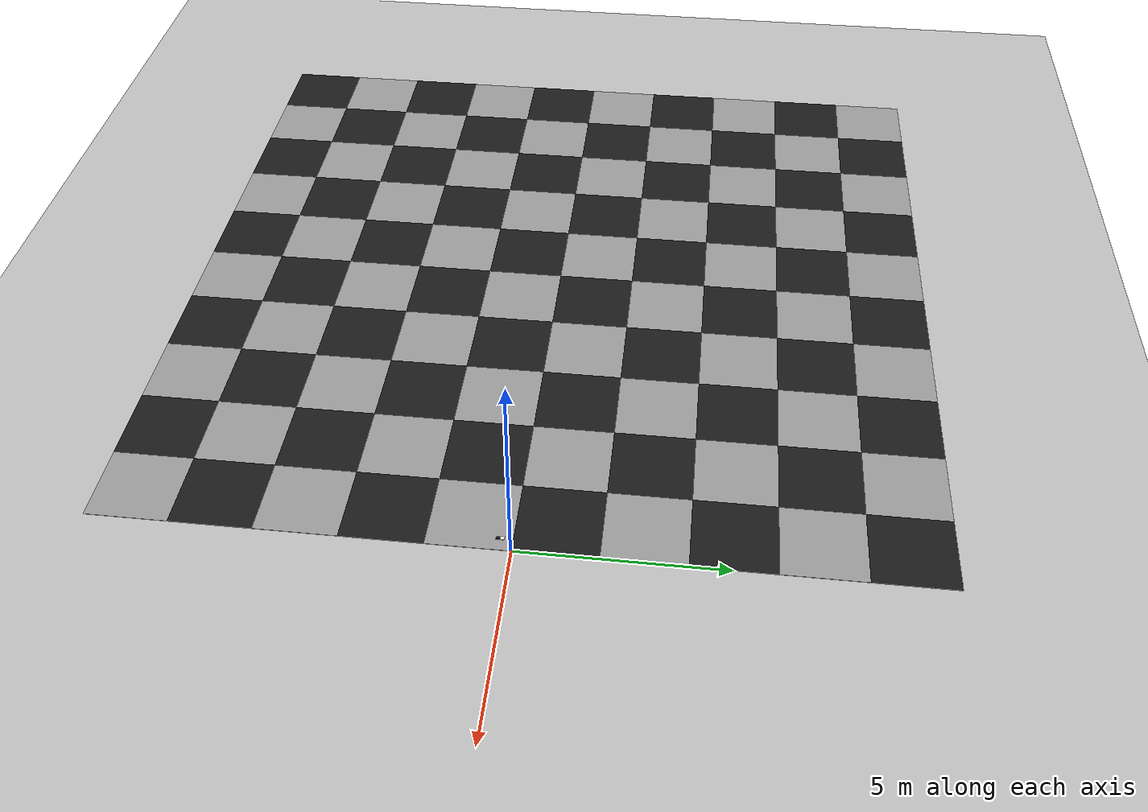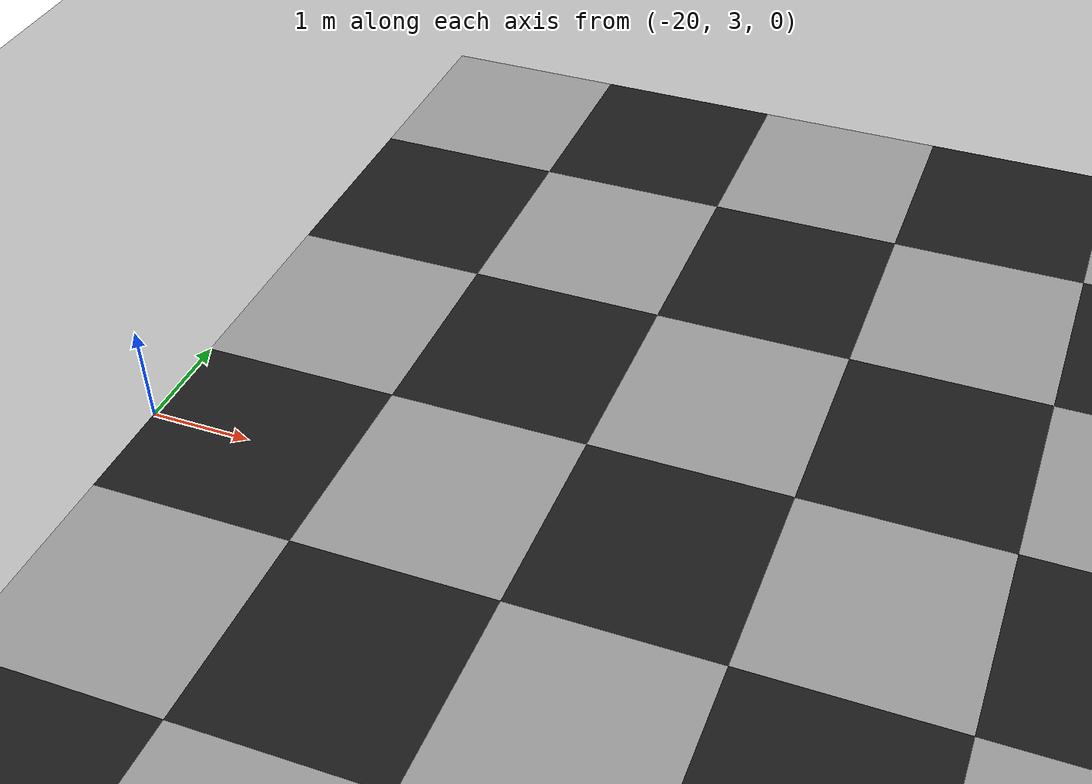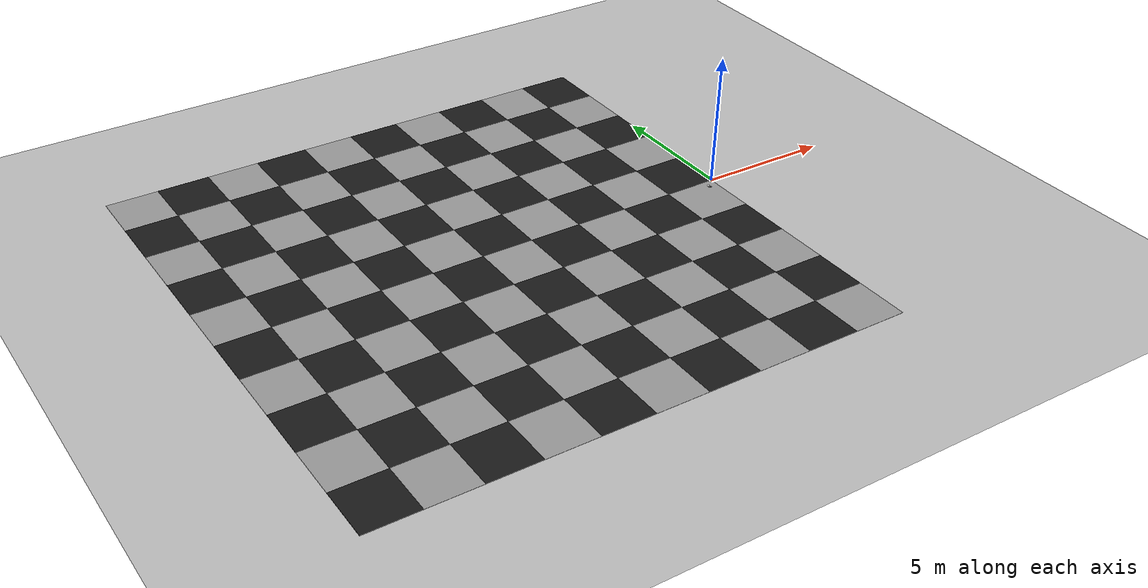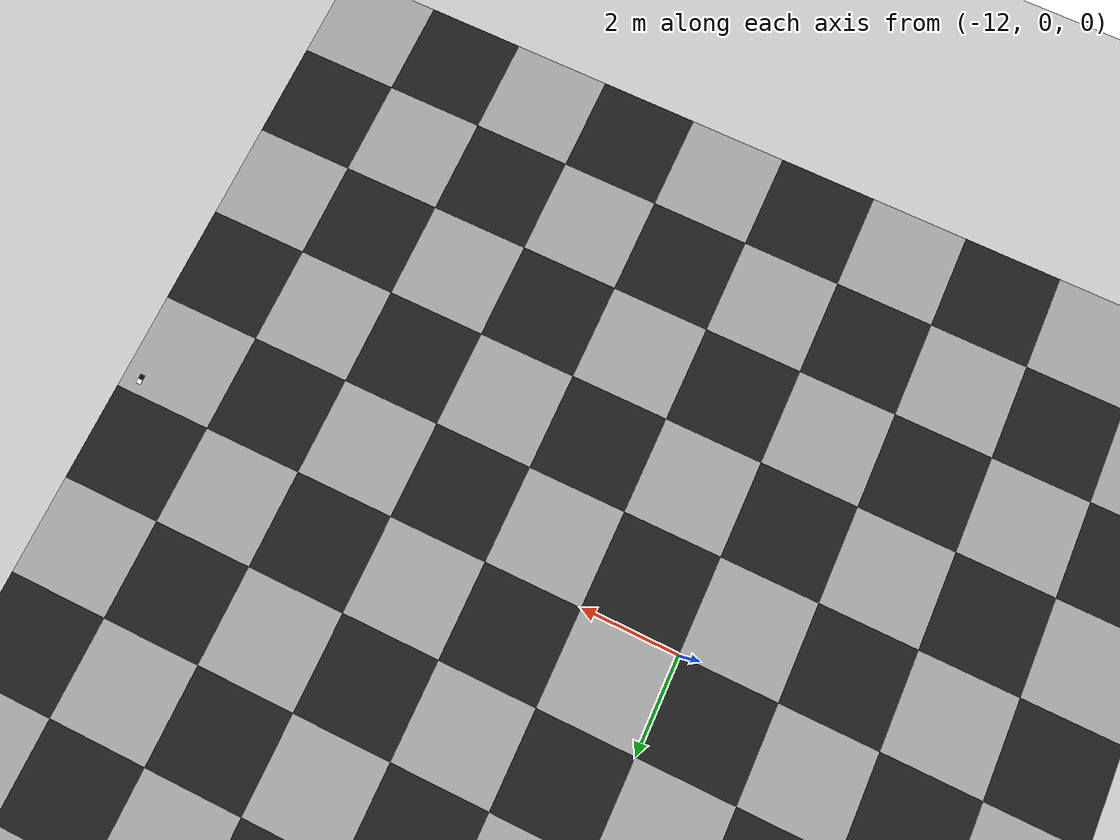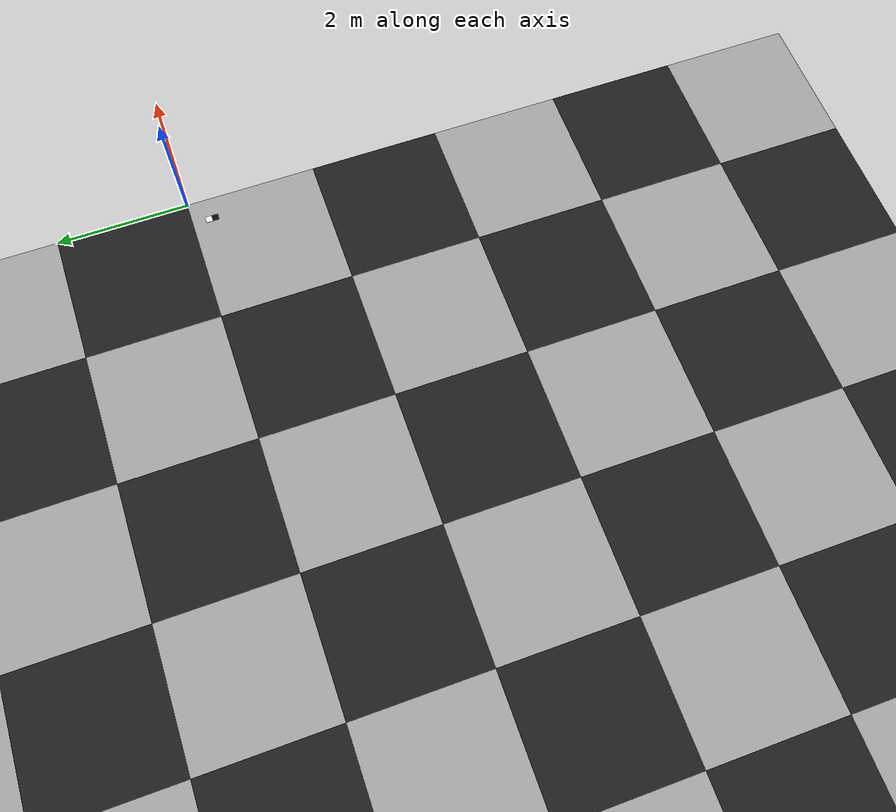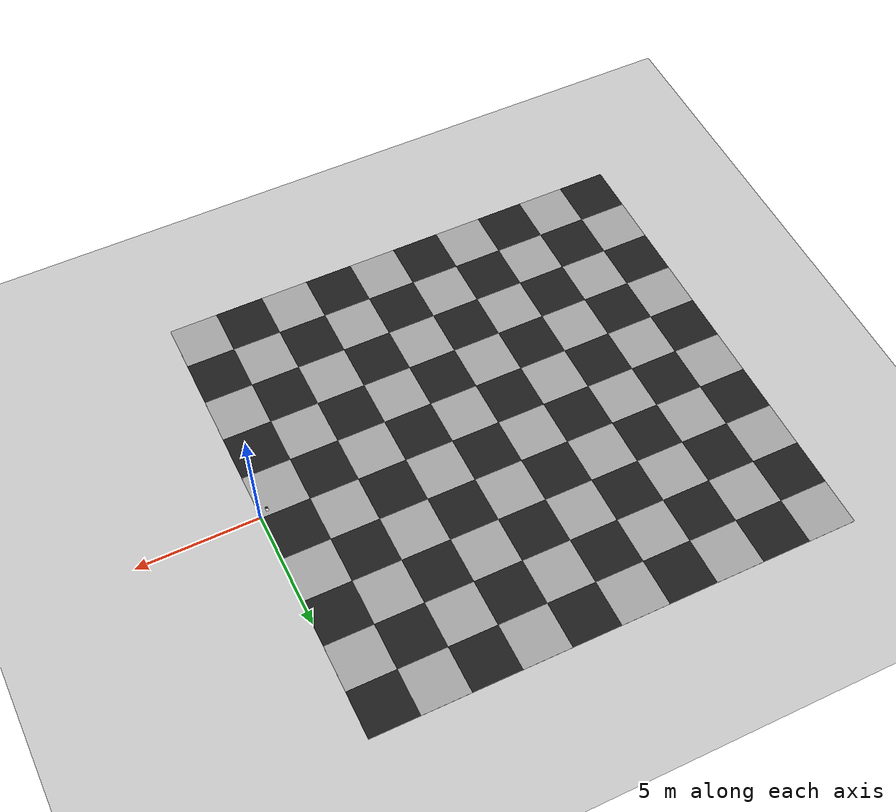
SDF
<sdf version="1.9">
 <world name="v7_railway_tunnel">
  <model name="ground_plane">
   <static>true</static>
   <link name="link">
    <collision name="collision">
     <geometry><plane><normal>0 0 1</normal><size>1 1</size></plane></geometry>
    </collision>
    <visual name="visual">
     <geometry><plane><normal>0 0 1</normal><size>500 500</size></plane></geometry>
     <material>
      <ambient>0.8 0.8 0.8 1</ambient>
      <diffuse>0.8 0.8 0.8 1</diffuse>
      <specular>0.1 0.1 0.1 1</specular>
     </material>
    </visual>
   </link>
  </model>
  <model name="optical_flow_floor">
   <static>true</static>
   <link name="tile_0_0">
    <pose>-19 -9 0.006 0 0 0</pose>
    <visual name="visual">
     <geometry><box><size>2 2 0.01</size></box></geometry>
     <material>
      <ambient>0.12 0.12 0.12 1</ambient>
      <diffuse>0.12 0.12 0.12 1</diffuse>
      <specular>0.1 0.1 0.1 1</specular>
     </material>
    </visual>
   </link>
   <link name="tile_0_1">
    <pose>-19 -7 0.006 0 0 0</pose>
    <visual name="visual">
     <geometry><box><size>2 2 0.01</size></box></geometry>
     <material>
      <ambient>0.65 0.65 0.65 1</ambient>
      <diffuse>0.65 0.65 0.65 1</diffuse>
      <specular>0.1 0.1 0.1 1</specular>
     </material>
    </visual>
   </link>
   <link name="tile_0_2">
    <pose>-19 -5 0.006 0 0 0</pose>
    <visual name="visual">
     <geometry><box><size>2 2 0.01</size></box></geometry>
     <material>
      <ambient>0.12 0.12 0.12 1</ambient>
      <diffuse>0.12 0.12 0.12 1</diffuse>
      <specular>0.1 0.1 0.1 1</specular>
     </material>
    </visual>
   </link>
   <link name="tile_0_3">
    <pose>-19 -3 0.006 0 0 0</pose>
    <visual name="visual">
     <geometry><box><size>2 2 0.01</size></box></geometry>
     <material>
      <ambient>0.65 0.65 0.65 1</ambient>
      <diffuse>0.65 0.65 0.65 1</diffuse>
      <specular>0.1 0.1 0.1 1</specular>
     </material>
    </visual>
   </link>
   <link name="tile_0_4">
    <pose>-19 -1 0.006 0 0 0</pose>
    <visual name="visual">
     <geometry><box><size>2 2 0.01</size></box></geometry>
     <material>
      <ambient>0.12 0.12 0.12 1</ambient>
      <diffuse>0.12 0.12 0.12 1</diffuse>
      <specular>0.1 0.1 0.1 1</specular>
     </material>
    </visual>
   </link>
   <link name="tile_0_5">
    <pose>-19 1 0.006 0 0 0</pose>
    <visual name="visual">
     <geometry><box><size>2 2 0.01</size></box></geometry>
     <material>
      <ambient>0.65 0.65 0.65 1</ambient>
      <diffuse>0.65 0.65 0.65 1</diffuse>
      <specular>0.1 0.1 0.1 1</specular>
     </material>
    </visual>
   </link>
   <link name="tile_0_6">
    <pose>-19 3 0.006 0 0 0</pose>
    <visual name="visual">
     <geometry><box><size>2 2 0.01</size></box></geometry>
     <material>
      <ambient>0.12 0.12 0.12 1</ambient>
      <diffuse>0.12 0.12 0.12 1</diffuse>
      <specular>0.1 0.1 0.1 1</specular>
     </material>
    </visual>
   </link>
   <link name="tile_0_7">
    <pose>-19 5 0.006 0 0 0</pose>
    <visual name="visual">
     <geometry><box><size>2 2 0.01</size></box></geometry>
     <material>
      <ambient>0.65 0.65 0.65 1</ambient>
      <diffuse>0.65 0.65 0.65 1</diffuse>
      <specular>0.1 0.1 0.1 1</specular>
     </material>
    </visual>
   </link>
   <link name="tile_0_8">
    <pose>-19 7 0.006 0 0 0</pose>
    <visual name="visual">
     <geometry><box><size>2 2 0.01</size></box></geometry>
     <material>
      <ambient>0.12 0.12 0.12 1</ambient>
      <diffuse>0.12 0.12 0.12 1</diffuse>
      <specular>0.1 0.1 0.1 1</specular>
     </material>
    </visual>
   </link>
   <link name="tile_0_9">
    <pose>-19 9 0.006 0 0 0</pose>
    <visual name="visual">
     <geometry><box><size>2 2 0.01</size></box></geometry>
     <material>
      <ambient>0.65 0.65 0.65 1</ambient>
      <diffuse>0.65 0.65 0.65 1</diffuse>
      <specular>0.1 0.1 0.1 1</specular>
     </material>
    </visual>
   </link>
   <link name="tile_1_0">
    <pose>-17 -9 0.006 0 0 0</pose>
    <visual name="visual">
     <geometry><box><size>2 2 0.01</size></box></geometry>
     <material>
      <ambient>0.65 0.65 0.65 1</ambient>
      <diffuse>0.65 0.65 0.65 1</diffuse>
      <specular>0.1 0.1 0.1 1</specular>
     </material>
    </visual>
   </link>
   <link name="tile_1_1">
    <pose>-17 -7 0.006 0 0 0</pose>
    <visual name="visual">
     <geometry><box><size>2 2 0.01</size></box></geometry>
     <material>
      <ambient>0.12 0.12 0.12 1</ambient>
      <diffuse>0.12 0.12 0.12 1</diffuse>
      <specular>0.1 0.1 0.1 1</specular>
     </material>
    </visual>
   </link>
   <link name="tile_1_2">
    <pose>-17 -5 0.006 0 0 0</pose>
    <visual name="visual">
     <geometry><box><size>2 2 0.01</size></box></geometry>
     <material>
      <ambient>0.65 0.65 0.65 1</ambient>
      <diffuse>0.65 0.65 0.65 1</diffuse>
      <specular>0.1 0.1 0.1 1</specular>
     </material>
    </visual>
   </link>
   <link name="tile_1_3">
    <pose>-17 -3 0.006 0 0 0</pose>
    <visual name="visual">
     <geometry><box><size>2 2 0.01</size></box></geometry>
     <material>
      <ambient>0.12 0.12 0.12 1</ambient>
      <diffuse>0.12 0.12 0.12 1</diffuse>
      <specular>0.1 0.1 0.1 1</specular>
     </material>
    </visual>
   </link>
   <link name="tile_1_4">
    <pose>-17 -1 0.006 0 0 0</pose>
    <visual name="visual">
     <geometry><box><size>2 2 0.01</size></box></geometry>
     <material>
      <ambient>0.65 0.65 0.65 1</ambient>
      <diffuse>0.65 0.65 0.65 1</diffuse>
      <specular>0.1 0.1 0.1 1</specular>
     </material>
    </visual>
   </link>
   <link name="tile_1_5">
    <pose>-17 1 0.006 0 0 0</pose>
    <visual name="visual">
     <geometry><box><size>2 2 0.01</size></box></geometry>
     <material>
      <ambient>0.12 0.12 0.12 1</ambient>
      <diffuse>0.12 0.12 0.12 1</diffuse>
      <specular>0.1 0.1 0.1 1</specular>
     </material>
    </visual>
   </link>
   <link name="tile_1_6">
    <pose>-17 3 0.006 0 0 0</pose>
    <visual name="visual">
     <geometry><box><size>2 2 0.01</size></box></geometry>
     <material>
      <ambient>0.65 0.65 0.65 1</ambient>
      <diffuse>0.65 0.65 0.65 1</diffuse>
      <specular>0.1 0.1 0.1 1</specular>
     </material>
    </visual>
   </link>
   <link name="tile_1_7">
    <pose>-17 5 0.006 0 0 0</pose>
    <visual name="visual">
     <geometry><box><size>2 2 0.01</size></box></geometry>
     <material>
      <ambient>0.12 0.12 0.12 1</ambient>
      <diffuse>0.12 0.12 0.12 1</diffuse>
      <specular>0.1 0.1 0.1 1</specular>
     </material>
    </visual>
   </link>
   <link name="tile_1_8">
    <pose>-17 7 0.006 0 0 0</pose>
    <visual name="visual">
     <geometry><box><size>2 2 0.01</size></box></geometry>
     <material>
      <ambient>0.65 0.65 0.65 1</ambient>
      <diffuse>0.65 0.65 0.65 1</diffuse>
      <specular>0.1 0.1 0.1 1</specular>
     </material>
    </visual>
   </link>
   <link name="tile_1_9">
    <pose>-17 9 0.006 0 0 0</pose>
    <visual name="visual">
     <geometry><box><size>2 2 0.01</size></box></geometry>
     <material>
      <ambient>0.12 0.12 0.12 1</ambient>
      <diffuse>0.12 0.12 0.12 1</diffuse>
      <specular>0.1 0.1 0.1 1</specular>
     </material>
    </visual>
   </link>
   <link name="tile_2_0">
    <pose>-15 -9 0.006 0 0 0</pose>
    <visual name="visual">
     <geometry><box><size>2 2 0.01</size></box></geometry>
     <material>
      <ambient>0.12 0.12 0.12 1</ambient>
      <diffuse>0.12 0.12 0.12 1</diffuse>
      <specular>0.1 0.1 0.1 1</specular>
     </material>
    </visual>
   </link>
   <link name="tile_2_1">
    <pose>-15 -7 0.006 0 0 0</pose>
    <visual name="visual">
     <geometry><box><size>2 2 0.01</size></box></geometry>
     <material>
      <ambient>0.65 0.65 0.65 1</ambient>
      <diffuse>0.65 0.65 0.65 1</diffuse>
      <specular>0.1 0.1 0.1 1</specular>
     </material>
    </visual>
   </link>
   <link name="tile_2_2">
    <pose>-15 -5 0.006 0 0 0</pose>
    <visual name="visual">
     <geometry><box><size>2 2 0.01</size></box></geometry>
     <material>
      <ambient>0.12 0.12 0.12 1</ambient>
      <diffuse>0.12 0.12 0.12 1</diffuse>
      <specular>0.1 0.1 0.1 1</specular>
     </material>
    </visual>
   </link>
   <link name="tile_2_3">
    <pose>-15 -3 0.006 0 0 0</pose>
    <visual name="visual">
     <geometry><box><size>2 2 0.01</size></box></geometry>
     <material>
      <ambient>0.65 0.65 0.65 1</ambient>
      <diffuse>0.65 0.65 0.65 1</diffuse>
      <specular>0.1 0.1 0.1 1</specular>
     </material>
    </visual>
   </link>
   <link name="tile_2_4">
    <pose>-15 -1 0.006 0 0 0</pose>
    <visual name="visual">
     <geometry><box><size>2 2 0.01</size></box></geometry>
     <material>
      <ambient>0.12 0.12 0.12 1</ambient>
      <diffuse>0.12 0.12 0.12 1</diffuse>
      <specular>0.1 0.1 0.1 1</specular>
     </material>
    </visual>
   </link>
   <link name="tile_2_5">
    <pose>-15 1 0.006 0 0 0</pose>
    <visual name="visual">
     <geometry><box><size>2 2 0.01</size></box></geometry>
     <material>
      <ambient>0.65 0.65 0.65 1</ambient>
      <diffuse>0.65 0.65 0.65 1</diffuse>
      <specular>0.1 0.1 0.1 1</specular>
     </material>
    </visual>
   </link>
   <link name="tile_2_6">
    <pose>-15 3 0.006 0 0 0</pose>
    <visual name="visual">
     <geometry><box><size>2 2 0.01</size></box></geometry>
     <material>
      <ambient>0.12 0.12 0.12 1</ambient>
      <diffuse>0.12 0.12 0.12 1</diffuse>
      <specular>0.1 0.1 0.1 1</specular>
     </material>
    </visual>
   </link>
   <link name="tile_2_7">
    <pose>-15 5 0.006 0 0 0</pose>
    <visual name="visual">
     <geometry><box><size>2 2 0.01</size></box></geometry>
     <material>
      <ambient>0.65 0.65 0.65 1</ambient>
      <diffuse>0.65 0.65 0.65 1</diffuse>
      <specular>0.1 0.1 0.1 1</specular>
     </material>
    </visual>
   </link>
   <link name="tile_2_8">
    <pose>-15 7 0.006 0 0 0</pose>
    <visual name="visual">
     <geometry><box><size>2 2 0.01</size></box></geometry>
     <material>
      <ambient>0.12 0.12 0.12 1</ambient>
      <diffuse>0.12 0.12 0.12 1</diffuse>
      <specular>0.1 0.1 0.1 1</specular>
     </material>
    </visual>
   </link>
   <link name="tile_2_9">
    <pose>-15 9 0.006 0 0 0</pose>
    <visual name="visual">
     <geometry><box><size>2 2 0.01</size></box></geometry>
     <material>
      <ambient>0.65 0.65 0.65 1</ambient>
      <diffuse>0.65 0.65 0.65 1</diffuse>
      <specular>0.1 0.1 0.1 1</specular>
     </material>
    </visual>
   </link>
   <link name="tile_3_0">
    <pose>-13 -9 0.006 0 0 0</pose>
    <visual name="visual">
     <geometry><box><size>2 2 0.01</size></box></geometry>
     <material>
      <ambient>0.65 0.65 0.65 1</ambient>
      <diffuse>0.65 0.65 0.65 1</diffuse>
      <specular>0.1 0.1 0.1 1</specular>
     </material>
    </visual>
   </link>
   <link name="tile_3_1">
    <pose>-13 -7 0.006 0 0 0</pose>
    <visual name="visual">
     <geometry><box><size>2 2 0.01</size></box></geometry>
     <material>
      <ambient>0.12 0.12 0.12 1</ambient>
      <diffuse>0.12 0.12 0.12 1</diffuse>
      <specular>0.1 0.1 0.1 1</specular>
     </material>
    </visual>
   </link>
   <link name="tile_3_2">
    <pose>-13 -5 0.006 0 0 0</pose>
    <visual name="visual">
     <geometry><box><size>2 2 0.01</size></box></geometry>
     <material>
      <ambient>0.65 0.65 0.65 1</ambient>
      <diffuse>0.65 0.65 0.65 1</diffuse>
      <specular>0.1 0.1 0.1 1</specular>
     </material>
    </visual>
   </link>
   <link name="tile_3_3">
    <pose>-13 -3 0.006 0 0 0</pose>
    <visual name="visual">
     <geometry><box><size>2 2 0.01</size></box></geometry>
     <material>
      <ambient>0.12 0.12 0.12 1</ambient>
      <diffuse>0.12 0.12 0.12 1</diffuse>
      <specular>0.1 0.1 0.1 1</specular>
     </material>
    </visual>
   </link>
   <link name="tile_3_4">
    <pose>-13 -1 0.006 0 0 0</pose>
    <visual name="visual">
     <geometry><box><size>2 2 0.01</size></box></geometry>
     <material>
      <ambient>0.65 0.65 0.65 1</ambient>
      <diffuse>0.65 0.65 0.65 1</diffuse>
      <specular>0.1 0.1 0.1 1</specular>
     </material>
    </visual>
   </link>
   <link name="tile_3_5">
    <pose>-13 1 0.006 0 0 0</pose>
    <visual name="visual">
     <geometry><box><size>2 2 0.01</size></box></geometry>
     <material>
      <ambient>0.12 0.12 0.12 1</ambient>
      <diffuse>0.12 0.12 0.12 1</diffuse>
      <specular>0.1 0.1 0.1 1</specular>
     </material>
    </visual>
   </link>
   <link name="tile_3_6">
    <pose>-13 3 0.006 0 0 0</pose>
    <visual name="visual">
     <geometry><box><size>2 2 0.01</size></box></geometry>
     <material>
      <ambient>0.65 0.65 0.65 1</ambient>
      <diffuse>0.65 0.65 0.65 1</diffuse>
      <specular>0.1 0.1 0.1 1</specular>
     </material>
    </visual>
   </link>
   <link name="tile_3_7">
    <pose>-13 5 0.006 0 0 0</pose>
    <visual name="visual">
     <geometry><box><size>2 2 0.01</size></box></geometry>
     <material>
      <ambient>0.12 0.12 0.12 1</ambient>
      <diffuse>0.12 0.12 0.12 1</diffuse>
      <specular>0.1 0.1 0.1 1</specular>
     </material>
    </visual>
   </link>
   <link name="tile_3_8">
    <pose>-13 7 0.006 0 0 0</pose>
    <visual name="visual">
     <geometry><box><size>2 2 0.01</size></box></geometry>
     <material>
      <ambient>0.65 0.65 0.65 1</ambient>
      <diffuse>0.65 0.65 0.65 1</diffuse>
      <specular>0.1 0.1 0.1 1</specular>
     </material>
    </visual>
   </link>
   <link name="tile_3_9">
    <pose>-13 9 0.006 0 0 0</pose>
    <visual name="visual">
     <geometry><box><size>2 2 0.01</size></box></geometry>
     <material>
      <ambient>0.12 0.12 0.12 1</ambient>
      <diffuse>0.12 0.12 0.12 1</diffuse>
      <specular>0.1 0.1 0.1 1</specular>
     </material>
    </visual>
   </link>
   <link name="tile_4_0">
    <pose>-11 -9 0.006 0 0 0</pose>
    <visual name="visual">
     <geometry><box><size>2 2 0.01</size></box></geometry>
     <material>
      <ambient>0.12 0.12 0.12 1</ambient>
      <diffuse>0.12 0.12 0.12 1</diffuse>
      <specular>0.1 0.1 0.1 1</specular>
     </material>
    </visual>
   </link>
   <link name="tile_4_1">
    <pose>-11 -7 0.006 0 0 0</pose>
    <visual name="visual">
     <geometry><box><size>2 2 0.01</size></box></geometry>
     <material>
      <ambient>0.65 0.65 0.65 1</ambient>
      <diffuse>0.65 0.65 0.65 1</diffuse>
      <specular>0.1 0.1 0.1 1</specular>
     </material>
    </visual>
   </link>
   <link name="tile_4_2">
    <pose>-11 -5 0.006 0 0 0</pose>
    <visual name="visual">
     <geometry><box><size>2 2 0.01</size></box></geometry>
     <material>
      <ambient>0.12 0.12 0.12 1</ambient>
      <diffuse>0.12 0.12 0.12 1</diffuse>
      <specular>0.1 0.1 0.1 1</specular>
     </material>
    </visual>
   </link>
   <link name="tile_4_3">
    <pose>-11 -3 0.006 0 0 0</pose>
    <visual name="visual">
     <geometry><box><size>2 2 0.01</size></box></geometry>
     <material>
      <ambient>0.65 0.65 0.65 1</ambient>
      <diffuse>0.65 0.65 0.65 1</diffuse>
      <specular>0.1 0.1 0.1 1</specular>
     </material>
    </visual>
   </link>
   <link name="tile_4_4">
    <pose>-11 -1 0.006 0 0 0</pose>
    <visual name="visual">
     <geometry><box><size>2 2 0.01</size></box></geometry>
     <material>
      <ambient>0.12 0.12 0.12 1</ambient>
      <diffuse>0.12 0.12 0.12 1</diffuse>
      <specular>0.1 0.1 0.1 1</specular>
     </material>
    </visual>
   </link>
   <link name="tile_4_5">
    <pose>-11 1 0.006 0 0 0</pose>
    <visual name="visual">
     <geometry><box><size>2 2 0.01</size></box></geometry>
     <material>
      <ambient>0.65 0.65 0.65 1</ambient>
      <diffuse>0.65 0.65 0.65 1</diffuse>
      <specular>0.1 0.1 0.1 1</specular>
     </material>
    </visual>
   </link>
   <link name="tile_4_6">
    <pose>-11 3 0.006 0 0 0</pose>
    <visual name="visual">
     <geometry><box><size>2 2 0.01</size></box></geometry>
     <material>
      <ambient>0.12 0.12 0.12 1</ambient>
      <diffuse>0.12 0.12 0.12 1</diffuse>
      <specular>0.1 0.1 0.1 1</specular>
     </material>
    </visual>
   </link>
   <link name="tile_4_7">
    <pose>-11 5 0.006 0 0 0</pose>
    <visual name="visual">
     <geometry><box><size>2 2 0.01</size></box></geometry>
     <material>
      <ambient>0.65 0.65 0.65 1</ambient>
      <diffuse>0.65 0.65 0.65 1</diffuse>
      <specular>0.1 0.1 0.1 1</specular>
     </material>
    </visual>
   </link>
   <link name="tile_4_8">
    <pose>-11 7 0.006 0 0 0</pose>
    <visual name="visual">
     <geometry><box><size>2 2 0.01</size></box></geometry>
     <material>
      <ambient>0.12 0.12 0.12 1</ambient>
      <diffuse>0.12 0.12 0.12 1</diffuse>
      <specular>0.1 0.1 0.1 1</specular>
     </material>
    </visual>
   </link>
   <link name="tile_4_9">
    <pose>-11 9 0.006 0 0 0</pose>
    <visual name="visual">
     <geometry><box><size>2 2 0.01</size></box></geometry>
     <material>
      <ambient>0.65 0.65 0.65 1</ambient>
      <diffuse>0.65 0.65 0.65 1</diffuse>
      <specular>0.1 0.1 0.1 1</specular>
     </material>
    </visual>
   </link>
   <link name="tile_5_0">
    <pose>-9 -9 0.006 0 0 0</pose>
    <visual name="visual">
     <geometry><box><size>2 2 0.01</size></box></geometry>
     <material>
      <ambient>0.65 0.65 0.65 1</ambient>
      <diffuse>0.65 0.65 0.65 1</diffuse>
      <specular>0.1 0.1 0.1 1</specular>
     </material>
    </visual>
   </link>
   <link name="tile_5_1">
    <pose>-9 -7 0.006 0 0 0</pose>
    <visual name="visual">
     <geometry><box><size>2 2 0.01</size></box></geometry>
     <material>
      <ambient>0.12 0.12 0.12 1</ambient>
      <diffuse>0.12 0.12 0.12 1</diffuse>
      <specular>0.1 0.1 0.1 1</specular>
     </material>
    </visual>
   </link>
   <link name="tile_5_2">
    <pose>-9 -5 0.006 0 0 0</pose>
    <visual name="visual">
     <geometry><box><size>2 2 0.01</size></box></geometry>
     <material>
      <ambient>0.65 0.65 0.65 1</ambient>
      <diffuse>0.65 0.65 0.65 1</diffuse>
      <specular>0.1 0.1 0.1 1</specular>
     </material>
    </visual>
   </link>
   <link name="tile_5_3">
    <pose>-9 -3 0.006 0 0 0</pose>
    <visual name="visual">
     <geometry><box><size>2 2 0.01</size></box></geometry>
     <material>
      <ambient>0.12 0.12 0.12 1</ambient>
      <diffuse>0.12 0.12 0.12 1</diffuse>
      <specular>0.1 0.1 0.1 1</specular>
     </material>
    </visual>
   </link>
   <link name="tile_5_4">
    <pose>-9 -1 0.006 0 0 0</pose>
    <visual name="visual">
     <geometry><box><size>2 2 0.01</size></box></geometry>
     <material>
      <ambient>0.65 0.65 0.65 1</ambient>
      <diffuse>0.65 0.65 0.65 1</diffuse>
      <specular>0.1 0.1 0.1 1</specular>
     </material>
    </visual>
   </link>
   <link name="tile_5_5">
    <pose>-9 1 0.006 0 0 0</pose>
    <visual name="visual">
     <geometry><box><size>2 2 0.01</size></box></geometry>
     <material>
      <ambient>0.12 0.12 0.12 1</ambient>
      <diffuse>0.12 0.12 0.12 1</diffuse>
      <specular>0.1 0.1 0.1 1</specular>
     </material>
    </visual>
   </link>
   <link name="tile_5_6">
    <pose>-9 3 0.006 0 0 0</pose>
    <visual name="visual">
     <geometry><box><size>2 2 0.01</size></box></geometry>
     <material>
      <ambient>0.65 0.65 0.65 1</ambient>
      <diffuse>0.65 0.65 0.65 1</diffuse>
      <specular>0.1 0.1 0.1 1</specular>
     </material>
    </visual>
   </link>
   <link name="tile_5_7">
    <pose>-9 5 0.006 0 0 0</pose>
    <visual name="visual">
     <geometry><box><size>2 2 0.01</size></box></geometry>
     <material>
      <ambient>0.12 0.12 0.12 1</ambient>
      <diffuse>0.12 0.12 0.12 1</diffuse>
      <specular>0.1 0.1 0.1 1</specular>
     </material>
    </visual>
   </link>
   <link name="tile_5_8">
    <pose>-9 7 0.006 0 0 0</pose>
    <visual name="visual">
     <geometry><box><size>2 2 0.01</size></box></geometry>
     <material>
      <ambient>0.65 0.65 0.65 1</ambient>
      <diffuse>0.65 0.65 0.65 1</diffuse>
      <specular>0.1 0.1 0.1 1</specular>
     </material>
    </visual>
   </link>
   <link name="tile_5_9">
    <pose>-9 9 0.006 0 0 0</pose>
    <visual name="visual">
     <geometry><box><size>2 2 0.01</size></box></geometry>
     <material>
      <ambient>0.12 0.12 0.12 1</ambient>
      <diffuse>0.12 0.12 0.12 1</diffuse>
      <specular>0.1 0.1 0.1 1</specular>
     </material>
    </visual>
   </link>
   <link name="tile_6_0">
    <pose>-7 -9 0.006 0 0 0</pose>
    <visual name="visual">
     <geometry><box><size>2 2 0.01</size></box></geometry>
     <material>
      <ambient>0.12 0.12 0.12 1</ambient>
      <diffuse>0.12 0.12 0.12 1</diffuse>
      <specular>0.1 0.1 0.1 1</specular>
     </material>
    </visual>
   </link>
   <link name="tile_6_1">
    <pose>-7 -7 0.006 0 0 0</pose>
    <visual name="visual">
     <geometry><box><size>2 2 0.01</size></box></geometry>
     <material>
      <ambient>0.65 0.65 0.65 1</ambient>
      <diffuse>0.65 0.65 0.65 1</diffuse>
      <specular>0.1 0.1 0.1 1</specular>
     </material>
    </visual>
   </link>
   <link name="tile_6_2">
    <pose>-7 -5 0.006 0 0 0</pose>
    <visual name="visual">
     <geometry><box><size>2 2 0.01</size></box></geometry>
     <material>
      <ambient>0.12 0.12 0.12 1</ambient>
      <diffuse>0.12 0.12 0.12 1</diffuse>
      <specular>0.1 0.1 0.1 1</specular>
     </material>
    </visual>
   </link>
   <link name="tile_6_3">
    <pose>-7 -3 0.006 0 0 0</pose>
    <visual name="visual">
     <geometry><box><size>2 2 0.01</size></box></geometry>
     <material>
      <ambient>0.65 0.65 0.65 1</ambient>
      <diffuse>0.65 0.65 0.65 1</diffuse>
      <specular>0.1 0.1 0.1 1</specular>
     </material>
    </visual>
   </link>
   <link name="tile_6_4">
    <pose>-7 -1 0.006 0 0 0</pose>
    <visual name="visual">
     <geometry><box><size>2 2 0.01</size></box></geometry>
     <material>
      <ambient>0.12 0.12 0.12 1</ambient>
      <diffuse>0.12 0.12 0.12 1</diffuse>
      <specular>0.1 0.1 0.1 1</specular>
     </material>
    </visual>
   </link>
   <link name="tile_6_5">
    <pose>-7 1 0.006 0 0 0</pose>
    <visual name="visual">
     <geometry><box><size>2 2 0.01</size></box></geometry>
     <material>
      <ambient>0.65 0.65 0.65 1</ambient>
      <diffuse>0.65 0.65 0.65 1</diffuse>
      <specular>0.1 0.1 0.1 1</specular>
     </material>
    </visual>
   </link>
   <link name="tile_6_6">
    <pose>-7 3 0.006 0 0 0</pose>
    <visual name="visual">
     <geometry><box><size>2 2 0.01</size></box></geometry>
     <material>
      <ambient>0.12 0.12 0.12 1</ambient>
      <diffuse>0.12 0.12 0.12 1</diffuse>
      <specular>0.1 0.1 0.1 1</specular>
     </material>
    </visual>
   </link>
   <link name="tile_6_7">
    <pose>-7 5 0.006 0 0 0</pose>
    <visual name="visual">
     <geometry><box><size>2 2 0.01</size></box></geometry>
     <material>
      <ambient>0.65 0.65 0.65 1</ambient>
      <diffuse>0.65 0.65 0.65 1</diffuse>
      <specular>0.1 0.1 0.1 1</specular>
     </material>
    </visual>
   </link>
   <link name="tile_6_8">
    <pose>-7 7 0.006 0 0 0</pose>
    <visual name="visual">
     <geometry><box><size>2 2 0.01</size></box></geometry>
     <material>
      <ambient>0.12 0.12 0.12 1</ambient>
      <diffuse>0.12 0.12 0.12 1</diffuse>
      <specular>0.1 0.1 0.1 1</specular>
     </material>
    </visual>
   </link>
   <link name="tile_6_9">
    <pose>-7 9 0.006 0 0 0</pose>
    <visual name="visual">
     <geometry><box><size>2 2 0.01</size></box></geometry>
     <material>
      <ambient>0.65 0.65 0.65 1</ambient>
      <diffuse>0.65 0.65 0.65 1</diffuse>
      <specular>0.1 0.1 0.1 1</specular>
     </material>
    </visual>
   </link>
   <link name="tile_7_0">
    <pose>-5 -9 0.006 0 0 0</pose>
    <visual name="visual">
     <geometry><box><size>2 2 0.01</size></box></geometry>
     <material>
      <ambient>0.65 0.65 0.65 1</ambient>
      <diffuse>0.65 0.65 0.65 1</diffuse>
      <specular>0.1 0.1 0.1 1</specular>
     </material>
    </visual>
   </link>
   <link name="tile_7_1">
    <pose>-5 -7 0.006 0 0 0</pose>
    <visual name="visual">
     <geometry><box><size>2 2 0.01</size></box></geometry>
     <material>
      <ambient>0.12 0.12 0.12 1</ambient>
      <diffuse>0.12 0.12 0.12 1</diffuse>
      <specular>0.1 0.1 0.1 1</specular>
     </material>
    </visual>
   </link>
   <link name="tile_7_2">
    <pose>-5 -5 0.006 0 0 0</pose>
    <visual name="visual">
     <geometry><box><size>2 2 0.01</size></box></geometry>
     <material>
      <ambient>0.65 0.65 0.65 1</ambient>
      <diffuse>0.65 0.65 0.65 1</diffuse>
      <specular>0.1 0.1 0.1 1</specular>
     </material>
    </visual>
   </link>
   <link name="tile_7_3">
    <pose>-5 -3 0.006 0 0 0</pose>
    <visual name="visual">
     <geometry><box><size>2 2 0.01</size></box></geometry>
     <material>
      <ambient>0.12 0.12 0.12 1</ambient>
      <diffuse>0.12 0.12 0.12 1</diffuse>
      <specular>0.1 0.1 0.1 1</specular>
     </material>
    </visual>
   </link>
   <link name="tile_7_4">
    <pose>-5 -1 0.006 0 0 0</pose>
    <visual name="visual">
     <geometry><box><size>2 2 0.01</size></box></geometry>
     <material>
      <ambient>0.65 0.65 0.65 1</ambient>
      <diffuse>0.65 0.65 0.65 1</diffuse>
      <specular>0.1 0.1 0.1 1</specular>
     </material>
    </visual>
   </link>
   <link name="tile_7_5">
    <pose>-5 1 0.006 0 0 0</pose>
    <visual name="visual">
     <geometry><box><size>2 2 0.01</size></box></geometry>
     <material>
      <ambient>0.12 0.12 0.12 1</ambient>
      <diffuse>0.12 0.12 0.12 1</diffuse>
      <specular>0.1 0.1 0.1 1</specular>
     </material>
    </visual>
   </link>
   <link name="tile_7_6">
    <pose>-5 3 0.006 0 0 0</pose>
    <visual name="visual">
     <geometry><box><size>2 2 0.01</size></box></geometry>
     <material>
      <ambient>0.65 0.65 0.65 1</ambient>
      <diffuse>0.65 0.65 0.65 1</diffuse>
      <specular>0.1 0.1 0.1 1</specular>
     </material>
    </visual>
   </link>
   <link name="tile_7_7">
    <pose>-5 5 0.006 0 0 0</pose>
    <visual name="visual">
     <geometry><box><size>2 2 0.01</size></box></geometry>
     <material>
      <ambient>0.12 0.12 0.12 1</ambient>
      <diffuse>0.12 0.12 0.12 1</diffuse>
      <specular>0.1 0.1 0.1 1</specular>
     </material>
    </visual>
   </link>
   <link name="tile_7_8">
    <pose>-5 7 0.006 0 0 0</pose>
    <visual name="visual">
     <geometry><box><size>2 2 0.01</size></box></geometry>
     <material>
      <ambient>0.65 0.65 0.65 1</ambient>
      <diffuse>0.65 0.65 0.65 1</diffuse>
      <specular>0.1 0.1 0.1 1</specular>
     </material>
    </visual>
   </link>
   <link name="tile_7_9">
    <pose>-5 9 0.006 0 0 0</pose>
    <visual name="visual">
     <geometry><box><size>2 2 0.01</size></box></geometry>
     <material>
      <ambient>0.12 0.12 0.12 1</ambient>
      <diffuse>0.12 0.12 0.12 1</diffuse>
      <specular>0.1 0.1 0.1 1</specular>
     </material>
    </visual>
   </link>
   <link name="tile_8_0">
    <pose>-3 -9 0.006 0 0 0</pose>
    <visual name="visual">
     <geometry><box><size>2 2 0.01</size></box></geometry>
     <material>
      <ambient>0.12 0.12 0.12 1</ambient>
      <diffuse>0.12 0.12 0.12 1</diffuse>
      <specular>0.1 0.1 0.1 1</specular>
     </material>
    </visual>
   </link>
   <link name="tile_8_1">
    <pose>-3 -7 0.006 0 0 0</pose>
    <visual name="visual">
     <geometry><box><size>2 2 0.01</size></box></geometry>
     <material>
      <ambient>0.65 0.65 0.65 1</ambient>
      <diffuse>0.65 0.65 0.65 1</diffuse>
      <specular>0.1 0.1 0.1 1</specular>
     </material>
    </visual>
   </link>
   <link name="tile_8_2">
    <pose>-3 -5 0.006 0 0 0</pose>
    <visual name="visual">
     <geometry><box><size>2 2 0.01</size></box></geometry>
     <material>
      <ambient>0.12 0.12 0.12 1</ambient>
      <diffuse>0.12 0.12 0.12 1</diffuse>
      <specular>0.1 0.1 0.1 1</specular>
     </material>
    </visual>
   </link>
   <link name="tile_8_3">
    <pose>-3 -3 0.006 0 0 0</pose>
    <visual name="visual">
     <geometry><box><size>2 2 0.01</size></box></geometry>
     <material>
      <ambient>0.65 0.65 0.65 1</ambient>
      <diffuse>0.65 0.65 0.65 1</diffuse>
      <specular>0.1 0.1 0.1 1</specular>
     </material>
    </visual>
   </link>
   <link name="tile_8_4">
    <pose>-3 -1 0.006 0 0 0</pose>
    <visual name="visual">
     <geometry><box><size>2 2 0.01</size></box></geometry>
     <material>
      <ambient>0.12 0.12 0.12 1</ambient>
      <diffuse>0.12 0.12 0.12 1</diffuse>
      <specular>0.1 0.1 0.1 1</specular>
     </material>
    </visual>
   </link>
   <link name="tile_8_5">
    <pose>-3 1 0.006 0 0 0</pose>
    <visual name="visual">
     <geometry><box><size>2 2 0.01</size></box></geometry>
     <material>
      <ambient>0.65 0.65 0.65 1</ambient>
      <diffuse>0.65 0.65 0.65 1</diffuse>
      <specular>0.1 0.1 0.1 1</specular>
     </material>
    </visual>
   </link>
   <link name="tile_8_6">
    <pose>-3 3 0.006 0 0 0</pose>
    <visual name="visual">
     <geometry><box><size>2 2 0.01</size></box></geometry>
     <material>
      <ambient>0.12 0.12 0.12 1</ambient>
      <diffuse>0.12 0.12 0.12 1</diffuse>
      <specular>0.1 0.1 0.1 1</specular>
     </material>
    </visual>
   </link>
   <link name="tile_8_7">
    <pose>-3 5 0.006 0 0 0</pose>
    <visual name="visual">
     <geometry><box><size>2 2 0.01</size></box></geometry>
     <material>
      <ambient>0.65 0.65 0.65 1</ambient>
      <diffuse>0.65 0.65 0.65 1</diffuse>
      <specular>0.1 0.1 0.1 1</specular>
     </material>
    </visual>
   </link>
   <link name="tile_8_8">
    <pose>-3 7 0.006 0 0 0</pose>
    <visual name="visual">
     <geometry><box><size>2 2 0.01</size></box></geometry>
     <material>
      <ambient>0.12 0.12 0.12 1</ambient>
      <diffuse>0.12 0.12 0.12 1</diffuse>
      <specular>0.1 0.1 0.1 1</specular>
     </material>
    </visual>
   </link>
   <link name="tile_8_9">
    <pose>-3 9 0.006 0 0 0</pose>
    <visual name="visual">
     <geometry><box><size>2 2 0.01</size></box></geometry>
     <material>
      <ambient>0.65 0.65 0.65 1</ambient>
      <diffuse>0.65 0.65 0.65 1</diffuse>
      <specular>0.1 0.1 0.1 1</specular>
     </material>
    </visual>
   </link>
   <link name="tile_9_0">
    <pose>-1 -9 0.006 0 0 0</pose>
    <visual name="visual">
     <geometry><box><size>2 2 0.01</size></box></geometry>
     <material>
      <ambient>0.65 0.65 0.65 1</ambient>
      <diffuse>0.65 0.65 0.65 1</diffuse>
      <specular>0.1 0.1 0.1 1</specular>
     </material>
    </visual>
   </link>
   <link name="tile_9_1">
    <pose>-1 -7 0.006 0 0 0</pose>
    <visual name="visual">
     <geometry><box><size>2 2 0.01</size></box></geometry>
     <material>
      <ambient>0.12 0.12 0.12 1</ambient>
      <diffuse>0.12 0.12 0.12 1</diffuse>
      <specular>0.1 0.1 0.1 1</specular>
     </material>
    </visual>
   </link>
   <link name="tile_9_2">
    <pose>-1 -5 0.006 0 0 0</pose>
    <visual name="visual">
     <geometry><box><size>2 2 0.01</size></box></geometry>
     <material>
      <ambient>0.65 0.65 0.65 1</ambient>
      <diffuse>0.65 0.65 0.65 1</diffuse>
      <specular>0.1 0.1 0.1 1</specular>
     </material>
    </visual>
   </link>
   <link name="tile_9_3">
    <pose>-1 -3 0.006 0 0 0</pose>
    <visual name="visual">
     <geometry><box><size>2 2 0.01</size></box></geometry>
     <material>
      <ambient>0.12 0.12 0.12 1</ambient>
      <diffuse>0.12 0.12 0.12 1</diffuse>
      <specular>0.1 0.1 0.1 1</specular>
     </material>
    </visual>
   </link>
   <link name="tile_9_4">
    <pose>-1 -1 0.006 0 0 0</pose>
    <visual name="visual">
     <geometry><box><size>2 2 0.01</size></box></geometry>
     <material>
      <ambient>0.65 0.65 0.65 1</ambient>
      <diffuse>0.65 0.65 0.65 1</diffuse>
      <specular>0.1 0.1 0.1 1</specular>
     </material>
    </visual>
   </link>
   <link name="tile_9_5">
    <pose>-1 1 0.006 0 0 0</pose>
    <visual name="visual">
     <geometry><box><size>2 2 0.01</size></box></geometry>
     <material>
      <ambient>0.12 0.12 0.12 1</ambient>
      <diffuse>0.12 0.12 0.12 1</diffuse>
      <specular>0.1 0.1 0.1 1</specular>
     </material>
    </visual>
   </link>
   <link name="tile_9_6">
    <pose>-1 3 0.006 0 0 0</pose>
    <visual name="visual">
     <geometry><box><size>2 2 0.01</size></box></geometry>
     <material>
      <ambient>0.65 0.65 0.65 1</ambient>
      <diffuse>0.65 0.65 0.65 1</diffuse>
      <specular>0.1 0.1 0.1 1</specular>
     </material>
    </visual>
   </link>
   <link name="tile_9_7">
    <pose>-1 5 0.006 0 0 0</pose>
    <visual name="visual">
     <geometry><box><size>2 2 0.01</size></box></geometry>
     <material>
      <ambient>0.12 0.12 0.12 1</ambient>
      <diffuse>0.12 0.12 0.12 1</diffuse>
      <specular>0.1 0.1 0.1 1</specular>
     </material>
    </visual>
   </link>
   <link name="tile_9_8">
    <pose>-1 7 0.006 0 0 0</pose>
    <visual name="visual">
     <geometry><box><size>2 2 0.01</size></box></geometry>
     <material>
      <ambient>0.65 0.65 0.65 1</ambient>
      <diffuse>0.65 0.65 0.65 1</diffuse>
      <specular>0.1 0.1 0.1 1</specular>
     </material>
    </visual>
   </link>
   <link name="tile_9_9">
    <pose>-1 9 0.006 0 0 0</pose>
    <visual name="visual">
     <geometry><box><size>2 2 0.01</size></box></geometry>
     <material>
      <ambient>0.12 0.12 0.12 1</ambient>
      <diffuse>0.12 0.12 0.12 1</diffuse>
      <specular>0.1 0.1 0.1 1</specular>
     </material>
    </visual>
   </link>
   <link name="fine_tile_0_0">
    <pose>-0.35 -0.35 0.012 0 0 0</pose>
    <visual name="visual">
     <geometry><box><size>0.1 0.1 0.01</size></box></geometry>
     <material>
      <ambient>0.03 0.03 0.03 1</ambient>
      <diffuse>0.03 0.03 0.03 1</diffuse>
      <specular>0.1 0.1 0.1 1</specular>
     </material>
    </visual>
   </link>
   <link name="fine_tile_0_1">
    <pose>-0.35 -0.25 0.012 0 0 0</pose>
    <visual name="visual">
     <geometry><box><size>0.1 0.1 0.01</size></box></geometry>
     <material>
      <ambient>0.95 0.95 0.95 1</ambient>
      <diffuse>0.95 0.95 0.95 1</diffuse>
      <specular>0.1 0.1 0.1 1</specular>
     </material>
    </visual>
   </link>
  </model>
 </world>
</sdf>
